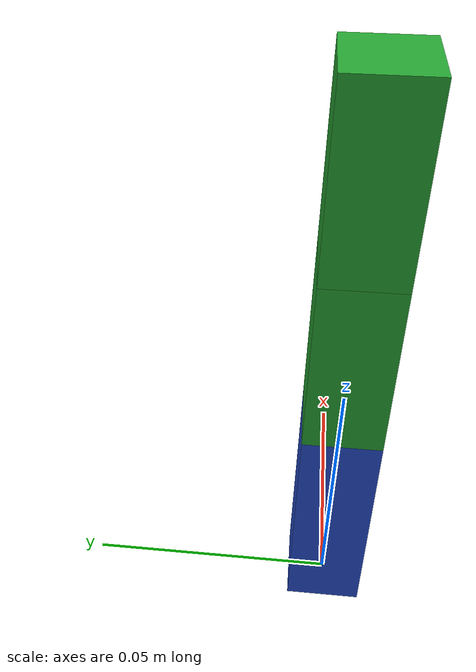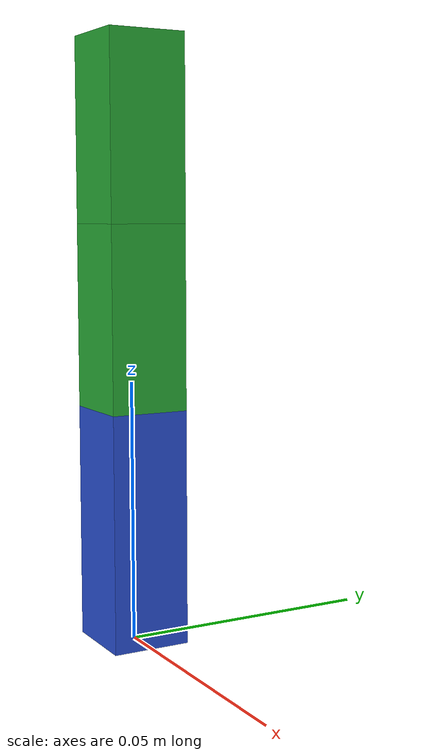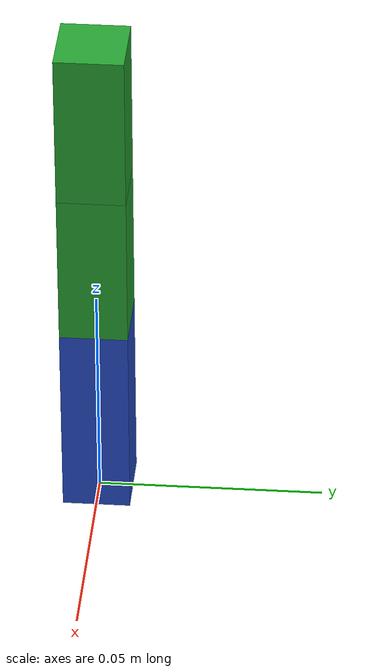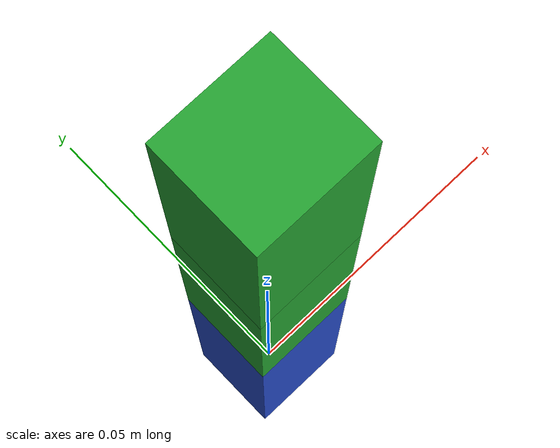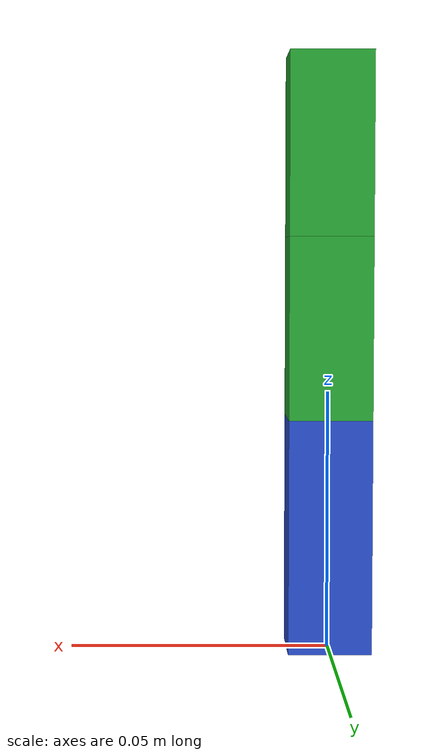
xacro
<?xml version="1.0" ?>

<robot xmlns:xacro="http://www.ros.org/wiki/xacro">

    <link name="base_4"/>

    <link name="finger_4_base">

        <visual>
            <geometry>
                <box size="0.016 0.015 0.045"/>
            </geometry>
            <origin xyz="0 0 0.0225" rpy="0 0 0"/>
            <material name="blue"/>
        </visual>

        <collision>
            <geometry>
                <box size="0.016 0.015 0.045"/>
            </geometry>
            <origin xyz="0 0 0.0225" rpy="0 0 0"/>
        </collision>

    </link>

    <link name="finger_4_middle">

        <visual>
            <geometry>
                <box size="0.016 0.015 0.035"/>
            </geometry>
            <origin xyz="0 0 0.0175" rpy="0 0 0"/>
            <material name="light_green"/>
        </visual>

        <collision>
            <geometry>
                <box size="0.016 0.015 0.035"/>
            </geometry>
            <origin xyz="0 0 0.0175" rpy="0 0 0"/>
        </collision>

    </link>

    <link name="finger_4_tip">

        <visual>
            <geometry>
                <box size="0.016 0.015 0.035"/>
            </geometry>
            <origin xyz="0 0 0.0175" rpy="0 0 0"/>
            <material name="dark_green"/>
        </visual>

        <collision>
            <geometry>
                <box size="0.016 0.015 0.035"/>
            </geometry>
            <origin xyz="0 0 0.0175" rpy="0 0 0"/>
        </collision>

    </link>

    <joint name="base_to_base_4" type="revolute">

        <parent link="base_4"/>
        <child link="finger_4_base"/>
        <origin xyz="0 0 0" rpy="0 0 0"/>

        <axis xyz="1 0 0"/>

        <limit
            effort="1000.0"
            velocity="1.0"
            lower="-1.57"
            upper="0.57"/>

    </joint>

     <joint name="base_to_middle_4" type="revolute">

        <parent link="finger_4_base"/>
        <child link="finger_4_middle"/>
        <origin xyz="0 0 0.045" rpy="0 0 0"/>

        <axis xyz="1 0 0"/>

        <limit
            effort="1000.0"
            velocity="1.0"
            lower="-1.57"
            upper="0.57"/>

    </joint>

    <joint name="middle_to_tip_4" type="revolute">

        <parent link="finger_4_middle"/>
        <child link="finger_4_tip"/>
        <origin xyz="0 0 0.035" rpy="0 0 0"/>

        <axis xyz="1 0 0"/>

        <limit
            effort="1000.0"
            velocity="1.0"
            lower="-1.57"
            upper="0.57"/>

    </joint>

</robot>
